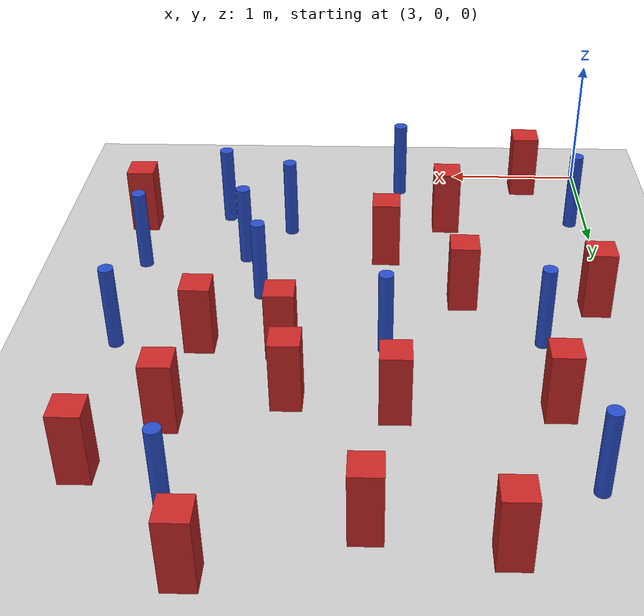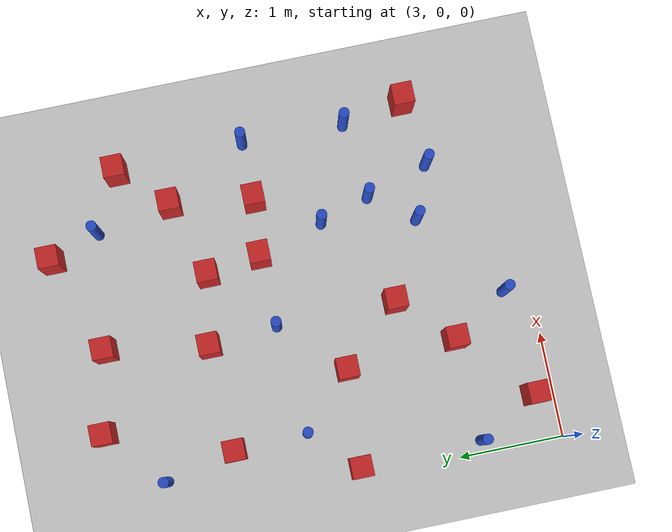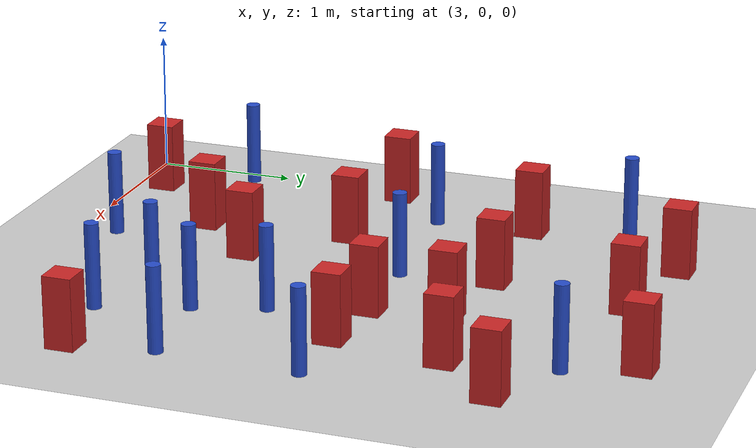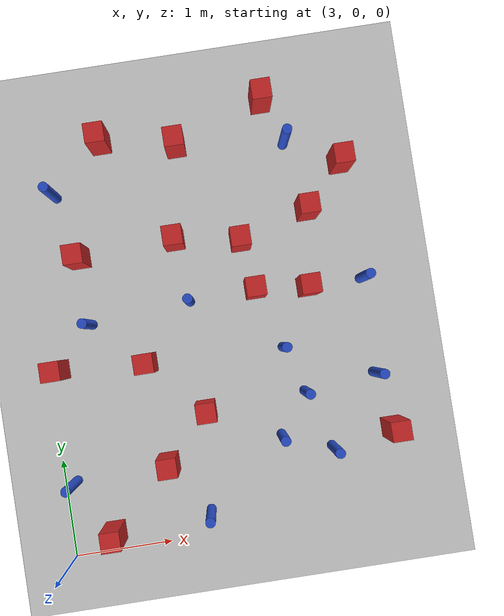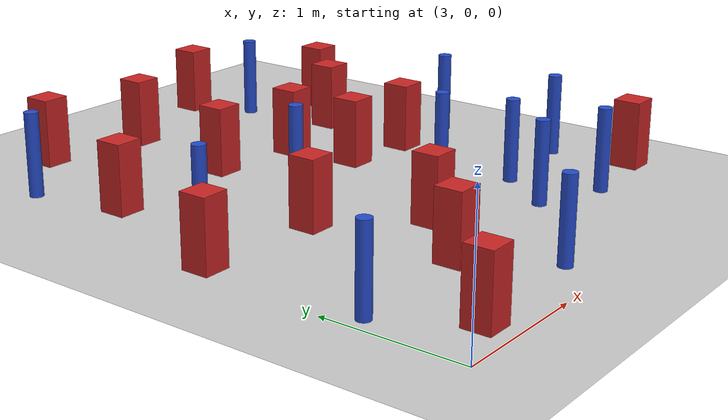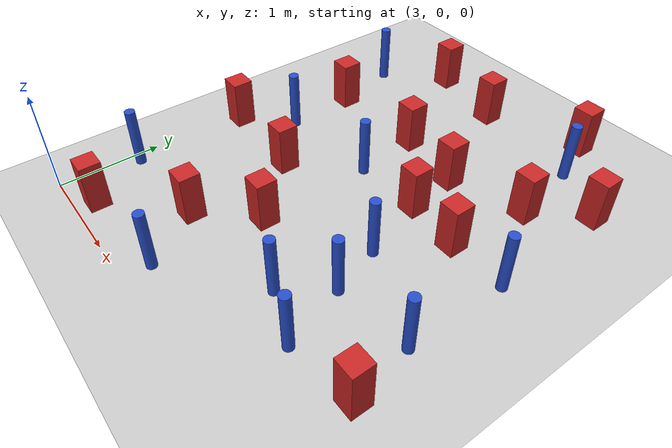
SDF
<sdf version="1.6">
 <world name="default">
  <model name="ground_plane">
   <static>1</static>
   <link name="link">
    <collision name="collision">
     <geometry><plane><normal>0 0 1</normal><size>100 100</size></plane></geometry>
     <surface><friction><ode><mu>100</mu><mu2>50</mu2></ode></friction></surface>
    </collision>
    <visual name="visual">
     <cast_shadows>0</cast_shadows>
     <geometry><plane><normal>0 0 1</normal><size>100 100</size></plane></geometry>
     <material>
      <ambient>1.0 1.0 1.0 1.0</ambient>
      <diffuse>0.8 0.8 0.8 1.0</diffuse>
      <specular>0.01 0.01 0.01 1.000000</specular>
     </material>
    </visual>
   </link>
  </model>
  <model name="square_post_obstacle8">
   <static>true</static>
   <pose>5.17539859756 2.99115189557 -6.11067671241e-07 -5.50515727128e-06 -8.79689657224e-07 2.37013304536e-05</pose>
   <link name="link">
    <pose>0 0 0.25 0 -0 0</pose>
    <inertial>
     <mass>100</mass>
     <inertia>
      <ixx>0.166667</ixx>
      <ixy>0</ixy>
      <ixz>0</ixz>
      <iyy>0.166667</iyy>
      <iyz>0</iyz>
      <izz>0.166667</izz>
     </inertia>
    </inertial>
    <collision name="collision"><geometry><box><size>.2 .2 .5</size></box></geometry></collision>
    <visual name="visual">
     <geometry><box><size>.2 .2 .5</size></box></geometry>
     <material>
      <script><name>Gazebo/Red</name><uri>file://media/materials/scripts/gazebo.material</uri></script>
     </material>
    </visual>
   </link>
  </model>
  <model name="square_post_obstacle30">
   <static>true</static>
   <pose>5.6018355657 4.41001559066 -6.11067671241e-07 -5.50515727128e-06 -8.79689657224e-07 2.37013304536e-05</pose>
   <link name="link">
    <pose>0 0 0.25 0 -0 0</pose>
    <inertial>
     <mass>100</mass>
     <inertia>
      <ixx>0.166667</ixx>
      <ixy>0</ixy>
      <ixz>0</ixz>
      <iyy>0.166667</iyy>
      <iyz>0</iyz>
      <izz>0.166667</izz>
     </inertia>
    </inertial>
    <collision name="collision"><geometry><box><size>.2 .2 .5</size></box></geometry></collision>
    <visual name="visual">
     <geometry><box><size>.2 .2 .5</size></box></geometry>
     <material>
      <script><name>Gazebo/Red</name><uri>file://media/materials/scripts/gazebo.material</uri></script>
     </material>
    </visual>
   </link>
  </model>
  <model name="square_post_obstacle32">
   <static>true</static>
   <pose>4.03051807676 1.88196295636 -6.11067671241e-07 -5.50515727128e-06 -8.79689657224e-07 2.37013304536e-05</pose>
   <link name="link">
    <pose>0 0 0.25 0 -0 0</pose>
    <inertial>
     <mass>100</mass>
     <inertia>
      <ixx>0.166667</ixx>
      <ixy>0</ixy>
      <ixz>0</ixz>
      <iyy>0.166667</iyy>
      <iyz>0</iyz>
      <izz>0.166667</izz>
     </inertia>
    </inertial>
    <collision name="collision"><geometry><box><size>.2 .2 .5</size></box></geometry></collision>
    <visual name="visual">
     <geometry><box><size>.2 .2 .5</size></box></geometry>
     <material>
      <script><name>Gazebo/Red</name><uri>file://media/materials/scripts/gazebo.material</uri></script>
     </material>
    </visual>
   </link>
  </model>
  <model name="pole_obstacle58">
   <static>true</static>
   <pose>5.80623147461 0.737018467399 -9.47619616065e-06 5.49618799737e-07 2.36310414061e-07 -1.550905348e-07</pose>
   <link name="link">
    <pose>0 0 0.3 0 -0 0</pose>
    <inertial>
     <mass>1</mass>
     <inertia><ixx>0.145833</ixx><ixy>0</ixy><ixz>0</ixz><iyy>0.145833</iyy><iyz>0</iyz><izz>0.125</izz></inertia>
    </inertial>
    <collision name="collision">
     <geometry><cylinder><radius>0.05</radius><length>.6</length></cylinder></geometry>
    </collision>
    <visual name="visual">
     <geometry><cylinder><radius>0.05</radius><length>.6</length></cylinder></geometry>
     <material>
      <script><name>Gazebo/Blue</name><uri>file://media/materials/scripts/gazebo.material</uri></script>
     </material>
    </visual>
   </link>
  </model>
  <model name="square_post_obstacle62">
   <static>true</static>
   <pose>6.32141894441 3.65301750351 -6.11067671241e-07 -5.50515727128e-06 -8.79689657224e-07 2.37013304536e-05</pose>
   <link name="link">
    <pose>0 0 0.25 0 -0 0</pose>
    <inertial>
     <mass>100</mass>
     <inertia>
      <ixx>0.166667</ixx>
      <ixy>0</ixy>
      <ixz>0</ixz>
      <iyy>0.166667</iyy>
      <iyz>0</iyz>
      <izz>0.166667</izz>
     </inertia>
    </inertial>
    <collision name="collision"><geometry><box><size>.2 .2 .5</size></box></geometry></collision>
    <visual name="visual">
     <geometry><box><size>.2 .2 .5</size></box></geometry>
     <material>
      <script><name>Gazebo/Red</name><uri>file://media/materials/scripts/gazebo.material</uri></script>
     </material>
    </visual>
   </link>
  </model>
  <model name="square_post_obstacle65">
   <static>true</static>
   <pose>6.4489217016 0.84232384105 -6.11067671241e-07 -5.50515727128e-06 -8.79689657224e-07 2.37013304536e-05</pose>
   <link name="link">
    <pose>0 0 0.25 0 -0 0</pose>
    <inertial>
     <mass>100</mass>
     <inertia>
      <ixx>0.166667</ixx>
      <ixy>0</ixy>
      <ixz>0</ixz>
      <iyy>0.166667</iyy>
      <iyz>0</iyz>
      <izz>0.166667</izz>
     </inertia>
    </inertial>
    <collision name="collision"><geometry><box><size>.2 .2 .5</size></box></geometry></collision>
    <visual name="visual">
     <geometry><box><size>.2 .2 .5</size></box></geometry>
     <material>
      <script><name>Gazebo/Red</name><uri>file://media/materials/scripts/gazebo.material</uri></script>
     </material>
    </visual>
   </link>
  </model>
  <model name="pole_obstacle72">
   <static>true</static>
   <pose>5.78239024026 3.94156603827 -9.47619616065e-06 5.49618799738e-07 2.36310414051e-07 -1.55090534805e-07</pose>
   <link name="link">
    <pose>0 0 0.3 0 -0 0</pose>
    <inertial>
     <mass>1</mass>
     <inertia><ixx>0.145833</ixx><ixy>0</ixy><ixz>0</ixz><iyy>0.145833</iyy><iyz>0</iyz><izz>0.125</izz></inertia>
    </inertial>
    <collision name="collision">
     <geometry><cylinder><radius>0.05</radius><length>.6</length></cylinder></geometry>
    </collision>
    <visual name="visual">
     <geometry><cylinder><radius>0.05</radius><length>.6</length></cylinder></geometry>
     <material>
      <script><name>Gazebo/Blue</name><uri>file://media/materials/scripts/gazebo.material</uri></script>
     </material>
    </visual>
   </link>
  </model>
  <model name="pole_obstacle86">
   <static>true</static>
   <pose>3.33875394392 3.74084037561 -9.47619616065e-06 5.49618799737e-07 2.36310414051e-07 -1.55090534807e-07</pose>
   <link name="link">
    <pose>0 0 0.3 0 -0 0</pose>
    <inertial>
     <mass>1</mass>
     <inertia><ixx>0.145833</ixx><ixy>0</ixy><ixz>0</ixz><iyy>0.145833</iyy><iyz>0</iyz><izz>0.125</izz></inertia>
    </inertial>
    <collision name="collision">
     <geometry><cylinder><radius>0.05</radius><length>.6</length></cylinder></geometry>
    </collision>
    <visual name="visual">
     <geometry><cylinder><radius>0.05</radius><length>.6</length></cylinder></geometry>
     <material>
      <script><name>Gazebo/Blue</name><uri>file://media/materials/scripts/gazebo.material</uri></script>
     </material>
    </visual>
   </link>
  </model>
  <model name="pole_obstacle96">
   <static>true</static>
   <pose>4.46110096537 0.269814581207 -9.47619616065e-06 5.49618799737e-07 2.3631041406e-07 -1.550905348e-07</pose>
   <link name="link">
    <pose>0 0 0.3 0 -0 0</pose>
    <inertial>
     <mass>1</mass>
     <inertia><ixx>0.145833</ixx><ixy>0</ixy><ixz>0</ixz><iyy>0.145833</iyy><iyz>0</iyz><izz>0.125</izz></inertia>
    </inertial>
    <collision name="collision">
     <geometry><cylinder><radius>0.05</radius><length>.6</length></cylinder></geometry>
    </collision>
    <visual name="visual">
     <geometry><cylinder><radius>0.05</radius><length>.6</length></cylinder></geometry>
     <material>
      <script><name>Gazebo/Blue</name><uri>file://media/materials/scripts/gazebo.material</uri></script>
     </material>
    </visual>
   </link>
  </model>
  <model name="square_post_obstacle86">
   <static>true</static>
   <pose>4.50449124375 3.10313683029 -6.11067671241e-07 -5.50515727128e-06 -8.79689657224e-07 2.37013304536e-05</pose>
   <link name="link">
    <pose>0 0 0.25 0 -0 0</pose>
    <inertial>
     <mass>100</mass>
     <inertia>
      <ixx>0.166667</ixx>
      <ixy>0</ixy>
      <ixz>0</ixz>
      <iyy>0.166667</iyy>
      <iyz>0</iyz>
      <izz>0.166667</izz>
     </inertia>
    </inertial>
    <collision name="collision"><geometry><box><size>.2 .2 .5</size></box></geometry></collision>
    <visual name="visual">
     <geometry><box><size>.2 .2 .5</size></box></geometry>
     <material>
      <script><name>Gazebo/Red</name><uri>file://media/materials/scripts/gazebo.material</uri></script>
     </material>
    </visual>
   </link>
  </model>
  <model name="pole_obstacle98">
   <static>true</static>
   <pose>3.12145613731 0.774537572794 -9.47619616065e-06 5.49618799738e-07 2.36310414075e-07 -1.55090534793e-07</pose>
   <link name="link">
    <pose>0 0 0.3 0 -0 0</pose>
    <inertial>
     <mass>1</mass>
     <inertia><ixx>0.145833</ixx><ixy>0</ixy><ixz>0</ixz><iyy>0.145833</iyy><iyz>0</iyz><izz>0.125</izz></inertia>
    </inertial>
    <collision name="collision">
     <geometry><cylinder><radius>0.05</radius><length>.6</length></cylinder></geometry>
    </collision>
    <visual name="visual">
     <geometry><cylinder><radius>0.05</radius><length>.6</length></cylinder></geometry>
     <material>
      <script><name>Gazebo/Blue</name><uri>file://media/materials/scripts/gazebo.material</uri></script>
     </material>
    </visual>
   </link>
  </model>
  <model name="square_post_obstacle96">
   <static>true</static>
   <pose>5.90619602401 3.21016827286 -6.11067671241e-07 -5.50515727128e-06 -8.79689657224e-07 2.37013304536e-05</pose>
   <link name="link">
    <pose>0 0 0.25 0 -0 0</pose>
    <inertial>
     <mass>100</mass>
     <inertia>
      <ixx>0.166667</ixx>
      <ixy>0</ixy>
      <ixz>0</ixz>
      <iyy>0.166667</iyy>
      <iyz>0</iyz>
      <izz>0.166667</izz>
     </inertia>
    </inertial>
    <collision name="collision"><geometry><box><size>.2 .2 .5</size></box></geometry></collision>
    <visual name="visual">
     <geometry><box><size>.2 .2 .5</size></box></geometry>
     <material>
      <script><name>Gazebo/Red</name><uri>file://media/materials/scripts/gazebo.material</uri></script>
     </material>
    </visual>
   </link>
  </model>
  <model name="pole_obstacle110">
   <static>true</static>
   <pose>3.51687782999 2.36335226181 -9.47619616065e-06 5.49618799737e-07 2.36310414051e-07 -1.55090534807e-07</pose>
   <link name="link">
    <pose>0 0 0.3 0 -0 0</pose>
    <inertial>
     <mass>1</mass>
     <inertia><ixx>0.145833</ixx><ixy>0</ixy><ixz>0</ixz><iyy>0.145833</iyy><iyz>0</iyz><izz>0.125</izz></inertia>
    </inertial>
    <collision name="collision">
     <geometry><cylinder><radius>0.05</radius><length>.6</length></cylinder></geometry>
    </collision>
    <visual name="visual">
     <geometry><cylinder><radius>0.05</radius><length>.6</length></cylinder></geometry>
     <material>
      <script><name>Gazebo/Blue</name><uri>file://media/materials/scripts/gazebo.material</uri></script>
     </material>
    </visual>
   </link>
  </model>
  <model name="pole_obstacle111">
   <static>true</static>
   <pose>5.60923711819 1.34564871552 -9.47619616065e-06 5.49618799738e-07 2.36310414071e-07 -1.55090534796e-07</pose>
   <link name="link">
    <pose>0 0 0.3 0 -0 0</pose>
    <inertial>
     <mass>1</mass>
     <inertia><ixx>0.145833</ixx><ixy>0</ixy><ixz>0</ixz><iyy>0.145833</iyy><iyz>0</iyz><izz>0.125</izz></inertia>
    </inertial>
    <collision name="collision">
     <geometry><cylinder><radius>0.05</radius><length>.6</length></cylinder></geometry>
    </collision>
    <visual name="visual">
     <geometry><cylinder><radius>0.05</radius><length>.6</length></cylinder></geometry>
     <material>
      <script><name>Gazebo/Blue</name><uri>file://media/materials/scripts/gazebo.material</uri></script>
     </material>
    </visual>
   </link>
  </model>
  <model name="square_post_obstacle101">
   <static>true</static>
   <pose>4.6620901332 4.07577329841 -6.11067671241e-07 -5.50515727128e-06 -8.79689657224e-07 2.37013304536e-05</pose>
   <link name="link">
    <pose>0 0 0.25 0 -0 0</pose>
    <inertial>
     <mass>100</mass>
     <inertia>
      <ixx>0.166667</ixx>
      <ixy>0</ixy>
      <ixz>0</ixz>
      <iyy>0.166667</iyy>
      <iyz>0</iyz>
      <izz>0.166667</izz>
     </inertia>
    </inertial>
    <collision name="collision"><geometry><box><size>.2 .2 .5</size></box></geometry></collision>
    <visual name="visual">
     <geometry><box><size>.2 .2 .5</size></box></geometry>
     <material>
      <script><name>Gazebo/Red</name><uri>file://media/materials/scripts/gazebo.material</uri></script>
     </material>
    </visual>
   </link>
  </model>
  <model name="pole_obstacle118">
   <static>true</static>
   <pose>6.3518518493 1.43069295154 -9.47619616065e-06 5.49618799738e-07 2.36310414071e-07 -1.55090534796e-07</pose>
   <link name="link">
    <pose>0 0 0.3 0 -0 0</pose>
    <inertial>
     <mass>1</mass>
     <inertia><ixx>0.145833</ixx><ixy>0</ixy><ixz>0</ixz><iyy>0.145833</iyy><iyz>0</iyz><izz>0.125</izz></inertia>
    </inertial>
    <collision name="collision">
     <geometry><cylinder><radius>0.05</radius><length>.6</length></cylinder></geometry>
    </collision>
    <visual name="visual">
     <geometry><cylinder><radius>0.05</radius><length>.6</length></cylinder></geometry>
     <material>
      <script><name>Gazebo/Blue</name><uri>file://media/materials/scripts/gazebo.material</uri></script>
     </material>
    </visual>
   </link>
  </model>
  <model name="square_post_obstacle115">
   <static>true</static>
   <pose>5.25163695553 2.47332419513 -6.11067671241e-07 -5.50515727128e-06 -8.79689657224e-07 2.37013304536e-05</pose>
   <link name="link">
    <pose>0 0 0.25 0 -0 0</pose>
    <inertial>
     <mass>100</mass>
     <inertia>
      <ixx>0.166667</ixx>
      <ixy>0</ixy>
      <ixz>0</ixz>
      <iyy>0.166667</iyy>
      <iyz>0</iyz>
      <izz>0.166667</izz>
     </inertia>
    </inertial>
    <collision name="collision"><geometry><box><size>.2 .2 .5</size></box></geometry></collision>
    <visual name="visual">
     <geometry><box><size>.2 .2 .5</size></box></geometry>
     <material>
      <script><name>Gazebo/Red</name><uri>file://media/materials/scripts/gazebo.material</uri></script>
     </material>
    </visual>
   </link>
  </model>
  <model name="pole_obstacle145">
   <static>true</static>
   <pose>5.45431777919 1.83151655857 -9.47619616065e-06 5.49618799738e-07 2.36310414071e-07 -1.55090534796e-07</pose>
   <link name="link">
    <pose>0 0 0.3 0 -0 0</pose>
    <inertial>
     <mass>1</mass>
     <inertia><ixx>0.145833</ixx><ixy>0</ixy><ixz>0</ixz><iyy>0.145833</iyy><iyz>0</iyz><izz>0.125</izz></inertia>
    </inertial>
    <collision name="collision">
     <geometry><cylinder><radius>0.05</radius><length>.6</length></cylinder></geometry>
    </collision>
    <visual name="visual">
     <geometry><cylinder><radius>0.05</radius><length>.6</length></cylinder></geometry>
     <material>
      <script><name>Gazebo/Blue</name><uri>file://media/materials/scripts/gazebo.material</uri></script>
     </material>
    </visual>
   </link>
  </model>
  <model name="square_post_obstacle139">
   <static>true</static>
   <pose>3.10821584897 1.94397625318 -6.11067671241e-07 -5.50515727128e-06 -8.79689657224e-07 2.37013304536e-05</pose>
   <link name="link">
    <pose>0 0 0.25 0 -0 0</pose>
    <inertial>
     <mass>100</mass>
     <inertia>
      <ixx>0.166667</ixx>
      <ixy>0</ixy>
      <ixz>0</ixz>
      <iyy>0.166667</iyy>
      <iyz>0</iyz>
      <izz>0.166667</izz>
     </inertia>
    </inertial>
    <collision name="collision"><geometry><box><size>.2 .2 .5</size></box></geometry></collision>
    <visual name="visual">
     <geometry><box><size>.2 .2 .5</size></box></geometry>
     <material>
      <script><name>Gazebo/Red</name><uri>file://media/materials/scripts/gazebo.material</uri></script>
     </material>
    </visual>
   </link>
  </model>
  <model name="square_post_obstacle146">
   <static>true</static>
   <pose>3.49594745811 3.06477056969 -6.11067671241e-07 -5.50515727128e-06 -8.79689657224e-07 2.37013304536e-05</pose>
   <link name="link">
    <pose>0 0 0.25 0 -0 0</pose>
    <inertial>
     <mass>100</mass>
     <inertia>
      <ixx>0.166667</ixx>
      <ixy>0</ixy>
      <ixz>0</ixz>
      <iyy>0.166667</iyy>
      <iyz>0</iyz>
      <izz>0.166667</izz>
     </inertia>
    </inertial>
    <collision name="collision"><geometry><box><size>.2 .2 .5</size></box></geometry></collision>
    <visual name="visual">
     <geometry><box><size>.2 .2 .5</size></box></geometry>
     <material>
      <script><name>Gazebo/Red</name><uri>file://media/materials/scripts/gazebo.material</uri></script>
     </material>
    </visual>
   </link>
  </model>
  <model name="pole_obstacle172">
   <static>true</static>
   <pose>6.36927538098 2.42018344628 -9.47619616065e-06 5.49618799738e-07 2.36310414051e-07 -1.55090534805e-07</pose>
   <link name="link">
    <pose>0 0 0.3 0 -0 0</pose>
    <inertial>
     <mass>1</mass>
     <inertia><ixx>0.145833</ixx><ixy>0</ixy><ixz>0</ixz><iyy>0.145833</iyy><iyz>0</iyz><izz>0.125</izz></inertia>
    </inertial>
    <collision name="collision">
     <geometry><cylinder><radius>0.05</radius><length>.6</length></cylinder></geometry>
    </collision>
    <visual name="visual">
     <geometry><cylinder><radius>0.05</radius><length>.6</length></cylinder></geometry>
     <material>
      <script><name>Gazebo/Blue</name><uri>file://media/materials/scripts/gazebo.material</uri></script>
     </material>
    </visual>
   </link>
  </model>
  <model name="square_post_obstacle173">
   <static>true</static>
   <pose>4.10714648593 0.825585048309 -6.11067671241e-07 -5.50515727128e-06 -8.79689657224e-07 2.37013304536e-05</pose>
   <link name="link">
    <pose>0 0 0.25 0 -0 0</pose>
    <inertial>
     <mass>100</mass>
     <inertia>
      <ixx>0.166667</ixx>
      <ixy>0</ixy>
      <ixz>0</ixz>
      <iyy>0.166667</iyy>
      <iyz>0</iyz>
      <izz>0.166667</izz>
     </inertia>
    </inertial>
    <collision name="collision"><geometry><box><size>.2 .2 .5</size></box></geometry></collision>
    <visual name="visual">
     <geometry><box><size>.2 .2 .5</size></box></geometry>
     <material>
      <script><name>Gazebo/Red</name><uri>file://media/materials/scripts/gazebo.material</uri></script>
     </material>
    </visual>
   </link>
  </model>
  <model name="square_post_obstacle176">
   <static>true</static>
   <pose>4.57017561437 1.30686988255 -6.11067671241e-07 -5.50515727128e-06 -8.79689657224e-07 2.37013304536e-05</pose>
   <link name="link">
    <pose>0 0 0.25 0 -0 0</pose>
    <inertial>
     <mass>100</mass>
     <inertia>
      <ixx>0.166667</ixx>
      <ixy>0</ixy>
      <ixz>0</ixz>
      <iyy>0.166667</iyy>
      <iyz>0</iyz>
      <izz>0.166667</izz>
     </inertia>
    </inertial>
    <collision name="collision"><geometry><box><size>.2 .2 .5</size></box></geometry></collision>
    <visual name="visual">
     <geometry><box><size>.2 .2 .5</size></box></geometry>
     <material>
      <script><name>Gazebo/Red</name><uri>file://media/materials/scripts/gazebo.material</uri></script>
     </material>
    </visual>
   </link>
  </model>
  <model name="square_post_obstacle181">
   <static>true</static>
   <pose>3.45100424384 0.202216119046 -6.11067671241e-07 -5.50515727128e-06 -8.79689657224e-07 2.37013304536e-05</pose>
   <link name="link">
    <pose>0 0 0.25 0 -0 0</pose>
    <inertial>
     <mass>100</mass>
     <inertia>
      <ixx>0.166667</ixx>
      <ixy>0</ixy>
      <ixz>0</ixz>
      <iyy>0.166667</iyy>
      <iyz>0</iyz>
      <izz>0.166667</izz>
     </inertia>
    </inertial>
    <collision name="collision"><geometry><box><size>.2 .2 .5</size></box></geometry></collision>
    <visual name="visual">
     <geometry><box><size>.2 .2 .5</size></box></geometry>
     <material>
      <script><name>Gazebo/Red</name><uri>file://media/materials/scripts/gazebo.material</uri></script>
     </material>
    </visual>
   </link>
  </model>
  <model name="pole_obstacle206">
   <static>true</static>
   <pose>4.56689697103 2.44648893138 -9.47619616065e-06 5.49618799738e-07 2.36310414051e-07 -1.55090534805e-07</pose>
   <link name="link">
    <pose>0 0 0.3 0 -0 0</pose>
    <inertial>
     <mass>1</mass>
     <inertia><ixx>0.145833</ixx><ixy>0</ixy><ixz>0</ixz><iyy>0.145833</iyy><iyz>0</iyz><izz>0.125</izz></inertia>
    </inertial>
    <collision name="collision">
     <geometry><cylinder><radius>0.05</radius><length>.6</length></cylinder></geometry>
    </collision>
    <visual name="visual">
     <geometry><cylinder><radius>0.05</radius><length>.6</length></cylinder></geometry>
     <material>
      <script><name>Gazebo/Blue</name><uri>file://media/materials/scripts/gazebo.material</uri></script>
     </material>
    </visual>
   </link>
  </model>
  <model name="square_post_obstacle212">
   <static>true</static>
   <pose>5.79712820303 2.41744705828 -6.11067671241e-07 -5.50515727128e-06 -8.79689657224e-07 2.37013304536e-05</pose>
   <link name="link">
    <pose>0 0 0.25 0 -0 0</pose>
    <inertial>
     <mass>100</mass>
     <inertia>
      <ixx>0.166667</ixx>
      <ixy>0</ixy>
      <ixz>0</ixz>
      <iyy>0.166667</iyy>
      <iyz>0</iyz>
      <izz>0.166667</izz>
     </inertia>
    </inertial>
    <collision name="collision"><geometry><box><size>.2 .2 .5</size></box></geometry></collision>
    <visual name="visual">
     <geometry><box><size>.2 .2 .5</size></box></geometry>
     <material>
      <script><name>Gazebo/Red</name><uri>file://media/materials/scripts/gazebo.material</uri></script>
     </material>
    </visual>
   </link>
  </model>
  <model name="square_post_obstacle226">
   <static>true</static>
   <pose>3.88852243447 4.2307419115 -6.11067671241e-07 -5.50515727128e-06 -8.79689657224e-07 2.37013304536e-05</pose>
   <link name="link">
    <pose>0 0 0.25 0 -0 0</pose>
    <inertial>
     <mass>100</mass>
     <inertia>
      <ixx>0.166667</ixx>
      <ixy>0</ixy>
      <ixz>0</ixz>
      <iyy>0.166667</iyy>
      <iyz>0</iyz>
      <izz>0.166667</izz>
     </inertia>
    </inertial>
    <collision name="collision"><geometry><box><size>.2 .2 .5</size></box></geometry></collision>
    <visual name="visual">
     <geometry><box><size>.2 .2 .5</size></box></geometry>
     <material>
      <script><name>Gazebo/Red</name><uri>file://media/materials/scripts/gazebo.material</uri></script>
     </material>
    </visual>
   </link>
  </model>
  <model name="pole_obstacle211">
   <static>true</static>
   <pose>5.30337499361 0.932524103515 -9.47619616065e-06 5.49618799737e-07 2.36310414061e-07 -1.550905348e-07</pose>
   <link name="link">
    <pose>0 0 0.3 0 -0 0</pose>
    <inertial>
     <mass>1</mass>
     <inertia><ixx>0.145833</ixx><ixy>0</ixy><ixz>0</ixz><iyy>0.145833</iyy><iyz>0</iyz><izz>0.125</izz></inertia>
    </inertial>
    <collision name="collision">
     <geometry><cylinder><radius>0.05</radius><length>.6</length></cylinder></geometry>
    </collision>
    <visual name="visual">
     <geometry><cylinder><radius>0.05</radius><length>.6</length></cylinder></geometry>
     <material>
      <script><name>Gazebo/Blue</name><uri>file://media/materials/scripts/gazebo.material</uri></script>
     </material>
    </visual>
   </link>
  </model>
 </world>
</sdf>
